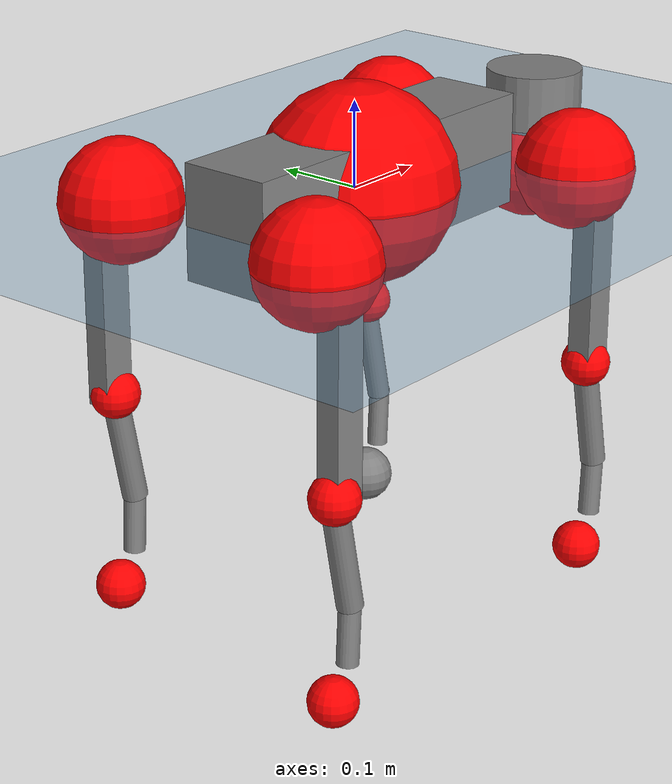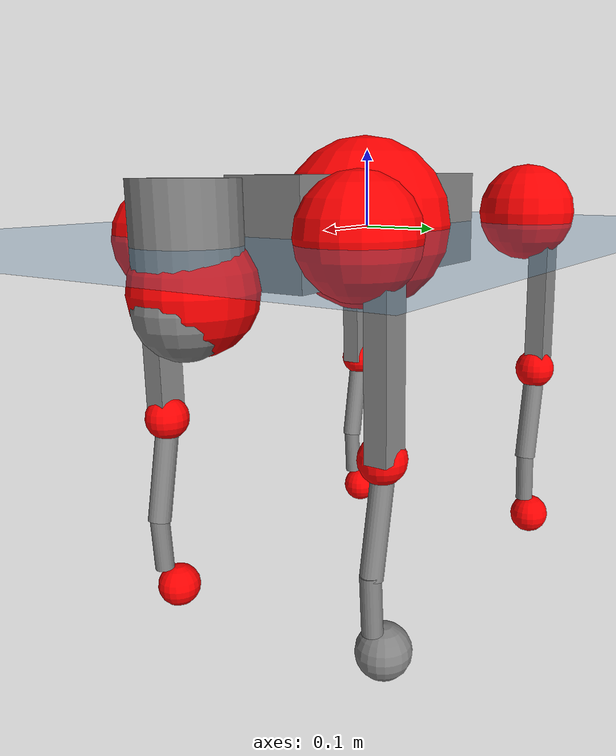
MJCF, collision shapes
<mujoco model="go2">
  <compiler angle="radian" assetdir="assets" balanceinertia="true" inertiafromgeom="false"/>

  <option timestep="0.005" density="1.2" viscosity="2e-05"/>

  <size nkey="1"/>

  <visual>
    <quality shadowsize="8192"/>
    <map shadowclip="0.5"/>
  </visual>

  <default>
    <default class="/">
      <geom contype="0" conaffinity="0" group="1" solref="-1000 -80"/>
      <site size="0.01 0.005 0.005" group="5"/>
      <general forcelimited="true" biastype="affine" gainprm="20" biasprm="0 -20 -0.5"/>
      <default class="go2">
        <joint armature="0.01" damping="0.01" frictionloss="0.2"/>
        <geom condim="1" margin="0.001"/>
        <default class="visual">
          <geom type="mesh" group="2"/>
        </default>
        <default class="collision">
          <geom group="3"/>
          <default class="foot">
            <geom size="0.022 0 0" condim="6" priority="1" friction="0.8 0.02 0.01" solimp="0.015 1 0.022"/>
          </default>
        </default>
        <default class="reward_collision_sphere">
          <geom group="5" rgba="1 0 0 1"/>
        </default>
      </default>
    </default>
  </default>

  <asset>
    <texture type="skybox" colorspace="auto" name="//unnamed_texture_0" builtin="gradient" rgb1="0.95 0.95 0.95" rgb2="0.95 0.95 0.95" width="100" height="600"/>
    <texture type="2d" colorspace="auto" name="texplane" builtin="checker" rgb1="0.345 0.575 0.748" rgb2="0.345 0.575 0.748" markrgb="1 1 1" width="512" height="512"/>
    <material name="MatPlane" class="/" texture="texplane" texuniform="true" texrepeat="2 2" specular="0.9"/>
    <material name="metal" class="/" rgba="0.9 0.95 0.95 1"/>
    <material name="black" class="/" rgba="0 0 0 1"/>
    <material name="white" class="/"/>
    <material name="gray" class="/" rgba="0.671705 0.692426 0.77427 1"/>
    <mesh name="base_0" class="/" file="base_0.obj"/>
    <mesh name="base_1" class="/" file="base_1.obj"/>
    <mesh name="base_2" class="/" file="base_2.obj"/>
    <mesh name="base_3" class="/" file="base_3.obj"/>
    <mesh name="base_4" class="/" file="base_4.obj"/>
    <mesh name="hip_0" class="/" file="hip_0.obj"/>
    <mesh name="hip_1" class="/" file="hip_1.obj"/>
    <mesh name="thigh_0" class="/" file="thigh_0.obj"/>
    <mesh name="thigh_1" class="/" file="thigh_1.obj"/>
    <mesh name="thigh_mirror_0" class="/" file="thigh_mirror_0.obj"/>
    <mesh name="thigh_mirror_1" class="/" file="thigh_mirror_1.obj"/>
    <mesh name="calf_0" class="/" file="calf_0.obj"/>
    <mesh name="calf_1" class="/" file="calf_1.obj"/>
    <mesh name="calf_mirror_0" class="/" file="calf_mirror_0.obj"/>
    <mesh name="calf_mirror_1" class="/" file="calf_mirror_1.obj"/>
    <mesh name="foot" class="/" file="foot.obj"/>
  </asset>

  <worldbody>
    <geom name="floor" class="/" size="100 100 0.125" type="plane" group="0" material="MatPlane"/>
    <light name="toplight_shadow" class="/" pos="0 0 5" dir="0.0990148 0.0990148 -0.990148" type="directional" ambient="0.04 0.04 0.04" diffuse="0.55 0.55 0.55" specular="0.12 0.12 0.12"/>
    <light name="toplight_fill" class="/" pos="0 0 5" dir="0.0990148 0.0990148 -0.990148" type="directional" castshadow="false" ambient="0.04 0.04 0.04" diffuse="0.3 0.3 0.3" specular="0.08 0.08 0.08"/>
    <body name="trunk" childclass="go2" pos="0.005641 0.00125086 0.00314991" quat="0.999997 0.00181867 0.00131786 -0.000606589">
      <inertial pos="0.0281796 -0.0036662 -0.00390418" quat="0.0189438 0.713994 -0.0307483 0.69922" mass="10.8822" diaginertia="0.212019 0.20697 0.0383323"/>
      <joint name="//unnamed_joint_0" type="free" armature="0" damping="0" frictionloss="0"/>
      <geom name="//unnamed_geom_1" class="visual" material="black" mesh="base_0"/>
      <geom name="//unnamed_geom_2" class="visual" material="black" mesh="base_1"/>
      <geom name="//unnamed_geom_3" class="visual" material="black" mesh="base_2"/>
      <geom name="//unnamed_geom_4" class="visual" material="white" mesh="base_3"/>
      <geom name="//unnamed_geom_5" class="visual" material="gray" mesh="base_4"/>
      <geom name="trunk_1" class="collision" size="0.217506 0.0540585 0.0659109" type="box"/>
      <geom name="trunk_2" class="collision" size="0.0578166 0.0520349" pos="0.33618 0 0.0112791" type="cylinder"/>
      <geom name="trunk_3" class="collision" size="0.0543476" pos="0.345617 0 -0.0676744"/>
      <geom name="//unnamed_geom_9" class="reward_collision_sphere" size="0.115633"/>
      <geom name="//unnamed_geom_10" class="reward_collision_sphere" size="0.0693799" pos="0.330282 0 -0.0507558"/>
      <site name="imu" pos="-0.0487929 0.0539851 0.054775" size="0.0115633"/>
      <camera name="track" pos="0 -2.32302 0" quat="0.707107 0.707107 0 0" mode="trackcom"/>
      <camera name="ego_camera" pos="0.368029 0 0.0507558" quat="-0.5 -0.5 0.5 0.5"/>
      <body name="FL_hip" pos="0.228012 0.0563994 0.00305851" quat="0.999987 -0.000768947 0.00117941 -0.00499563">
        <inertial pos="-0.00307297 0.00436382 6.28805e-05" quat="0.520468 0.496527 0.488735 0.493673" mass="0.933931" diaginertia="0.00178001 0.00112657 0.000745289"/>
        <joint name="FL_hip_joint" pos="0 0 0" axis="0.999769 0.00836771 0.019813" stiffness="0.00200543" range="-1.22169 1.03763" armature="0.00771784" damping="0.0269674" frictionloss="0.218005"/>
        <geom name="//unnamed_geom_11" class="visual" material="metal" mesh="hip_0"/>
        <geom name="//unnamed_geom_12" class="visual" material="gray" mesh="hip_1"/>
        <geom name="//unnamed_geom_13" class="collision" size="0.0531913 0.0231266" pos="0 0.0929208 0" quat="0.707107 0.707107 0 0" type="cylinder"/>
        <geom name="//unnamed_geom_14" class="reward_collision_sphere" size="0.0693799" pos="0 0.0813057 0"/>
        <body name="FL_thigh" pos="-0.00252002 0.111285 0.00190071" quat="1 -2.50632e-05 -3.94335e-05 -2.73547e-05">
          <inertial pos="-0.00610313 -0.0170102 -0.0260399" quat="0.830555 0.0828116 -0.0193347 0.550406" mass="1.80328" diaginertia="0.0140713 0.0132153 0.00165636"/>
          <joint name="FL_thigh_joint" pos="0 0 0" axis="0.00520445 0.99998 0.00347091" range="-1.56463 3.28581" armature="0.0137153" damping="0.0615356" frictionloss="0.234473"/>
          <geom name="//unnamed_geom_15" class="visual" material="metal" mesh="thigh_0"/>
          <geom name="//unnamed_geom_16" class="visual" material="gray" mesh="thigh_1"/>
          <geom name="//unnamed_geom_17" class="collision" size="0.123149 0.0141651 0.0196576" pos="0 0 -0.120122" quat="0.707107 0 0.707107 0" type="box"/>
          <body name="FL_calf" pos="-0.0111732 -0.00958165 -0.245715" quat="1 -2.91134e-05 1.70374e-05 -2.99995e-05">
            <inertial pos="0.00798817 0.0031252 -0.164634" quat="0.710712 0.000921419 -0.0045048 0.703468" mass="0.339074" diaginertia="0.00324149 0.003149 9.90731e-05"/>
            <joint name="FL_calf_joint" pos="0 0 0" axis="-0.00163389 0.999984 -0.00536001" stiffness="0.0524699" range="-2.82451 -0.677704" armature="0.0117539" damping="0" frictionloss="0.214545"/>
            <geom name="//unnamed_geom_18" class="visual" material="gray" mesh="calf_0"/>
            <geom name="//unnamed_geom_19" class="visual" material="black" mesh="calf_1"/>
            <geom name="FL_calf0" class="collision" size="0.013876 0.0693799" pos="0.00943663 0 -0.0676744" quat="0.994493 0 -0.104807 0" type="cylinder"/>
            <geom name="//unnamed_geom_21" class="collision" size="0.0127197 0.0375808" pos="0.0235916 0 -0.16693" quat="0.999688 0 0.0249974 0" type="cylinder"/>
            <geom name="//unnamed_geom_22" class="visual" pos="0 0 -0.240244" quat="1 0 0 0" material="black" mesh="foot"/>
            <geom name="FL_foot" class="foot" size="0.0344934" pos="-0.00235916 0 -0.240244"/>
            <geom name="//unnamed_geom_24" class="reward_collision_sphere" size="0.0289083"/>
            <geom name="//unnamed_geom_25" class="reward_collision_sphere" size="0.0289083" pos="-0.00235916 0 -0.240244"/>
            <site name="FL_foot" class="foot" pos="-0.00235916 0 -0.240244" size="0.0115633"/>
          </body>
        </body>
      </body>
      <body name="FR_hip" pos="0.225182 -0.0571844 -0.00929742" quat="0.999999 0.000630395 -0.000746449 0.000455572">
        <inertial pos="-0.00614877 0.00294995 0.00199866" quat="0.512841 0.496218 0.466842 0.522323" mass="0.921954" diaginertia="0.00185644 0.00108338 0.000780873"/>
        <joint name="FR_hip_joint" pos="0 0 0" axis="0.999968 -0.00714335 0.00347627" stiffness="0.0103606" range="-1.16608 1.08725" armature="0.0112603" damping="0" frictionloss="0.218245"/>
        <geom name="//unnamed_geom_26" class="visual" pos="0 2.92743e-10 1.25564e-08" quat="4.63268e-05 1 0 0" material="metal" mesh="hip_0"/>
        <geom name="//unnamed_geom_27" class="visual" pos="0 4.74572e-10 -3.10567e-08" quat="4.63268e-05 1 0 0" material="gray" mesh="hip_1"/>
        <geom name="//unnamed_geom_28" class="collision" size="0.0531913 0.0231266" pos="0 -0.0929208 0" quat="0.707107 0.707107 0 0" type="cylinder"/>
        <geom name="//unnamed_geom_29" class="reward_collision_sphere" size="0.0693799" pos="0 -0.0813057 0"/>
        <body name="FR_thigh" pos="-0.00283158 -0.111083 0.00674738" quat="1 -0.000238015 -0.000241042 0.000217838">
          <inertial pos="-0.00352999 0.0255034 -0.0273337" quat="0.538193 -0.036328 0.135904 0.830999" mass="1.55982" diaginertia="0.0125237 0.0108715 0.0014119"/>
          <joint name="FR_thigh_joint" pos="0 0 0" axis="-0.0100209 -0.999949 -0.00118243" stiffness="0.00562404" range="-3.3058 1.43655" armature="0.015152" damping="0.0183314" frictionloss="0.234743"/>
          <geom name="//unnamed_geom_30" class="visual" material="metal" mesh="thigh_mirror_0"/>
          <geom name="//unnamed_geom_31" class="visual" material="gray" mesh="thigh_mirror_1"/>
          <geom name="//unnamed_geom_32" class="collision" size="0.123149 0.0141651 0.0196576" pos="0 0 -0.120122" quat="0.707107 0 0.707107 0" type="box"/>
          <body name="FR_calf" pos="0.00134671 0.00236842 -0.239236" quat="1 0.00020713 -0.000257456 -5.07695e-05">
            <inertial pos="0.00811359 0.00235101 -0.170641" quat="0.700968 0.0130155 0.0017589 0.713071" mass="0.459441" diaginertia="0.00377818 0.00305785 0.000122324"/>
            <joint name="FR_calf_joint" pos="0 0 0" axis="0.00362402 -0.999991 -0.00225256" stiffness="0.019" range="0.870285 2.78979" armature="0.00799983" damping="0.00360734" frictionloss="0.231601"/>
            <geom name="//unnamed_geom_33" class="visual" material="gray" mesh="calf_mirror_0"/>
            <geom name="//unnamed_geom_34" class="visual" material="black" mesh="calf_mirror_1"/>
            <geom name="FR_calf0" class="collision" size="0.0150323 0.0693799" pos="0.0117958 0 -0.0676744" quat="0.995004 0 -0.0998334 0" type="cylinder"/>
            <geom name="//unnamed_geom_36" class="collision" size="0.0127197 0.0375808" pos="0.0235916 0 -0.16693" quat="0.999688 0 0.0249974 0" type="cylinder"/>
            <geom name="//unnamed_geom_37" class="visual" pos="0 0 -0.240244" quat="1 0 0 0" material="black" mesh="foot"/>
            <geom name="FR_foot" class="foot" size="0.0208952" pos="-0.00235916 0 -0.240244"/>
            <geom name="//unnamed_geom_39" class="reward_collision_sphere" size="0.0289083"/>
            <geom name="//unnamed_geom_40" class="reward_collision_sphere" size="0.0289083" pos="-0.00235916 0 -0.240244"/>
            <site name="FR_foot" class="foot" pos="-0.00235916 0 -0.240244" size="0.0115633"/>
          </body>
        </body>
      </body>
      <body name="RL_hip" pos="-0.229138 0.0567082 0.0090321" quat="1 0.000493245 8.17716e-05 0.000555855">
        <inertial pos="0.00766401 0.000447666 0.0087961" quat="0.503064 0.498124 0.493953 0.504788" mass="0.917621" diaginertia="0.00178819 0.00131553 0.000879402"/>
        <joint name="RL_hip_joint" pos="0 0 0" axis="-0.999941 0.0106862 0.00176585" range="-1.25532 0.877574" armature="0.0113307" damping="0.0337597" frictionloss="0.13317"/>
        <geom name="//unnamed_geom_41" class="visual" pos="-4.50149e-10 0 -8.82395e-08" quat="4.63268e-05 0 1 0" material="metal" mesh="hip_0"/>
        <geom name="//unnamed_geom_42" class="visual" pos="-7.29745e-10 0 -7.82559e-08" quat="4.63268e-05 0 1 0" material="gray" mesh="hip_1"/>
        <geom name="//unnamed_geom_43" class="collision" size="0.0531913 0.0231266" pos="0 0.0929208 0" quat="0.707107 0.707107 0 0" type="cylinder"/>
        <geom name="//unnamed_geom_44" class="reward_collision_sphere" size="0.0693799" pos="0 0.0813057 0"/>
        <body name="RL_thigh" pos="0.00143033 0.110507 -0.000998875" quat="1 -3.04049e-06 -1.46586e-05 -0.000106099">
          <inertial pos="0.00375554 -0.0249375 -0.026165" quat="0.820661 0.113834 -0.0479548 0.557905" mass="1.71678" diaginertia="0.0147601 0.0122985 0.00173144"/>
          <joint name="RL_thigh_joint" pos="0 0 0" axis="0.0308022 0.999196 0.025666" stiffness="0.00433821" range="-0.35491 4.52711" armature="0.0107631" damping="0.00486631" frictionloss="0.213939"/>
          <geom name="//unnamed_geom_45" class="visual" material="metal" mesh="thigh_0"/>
          <geom name="//unnamed_geom_46" class="visual" material="gray" mesh="thigh_1"/>
          <geom name="//unnamed_geom_47" class="collision" size="0.123149 0.0141651 0.0196576" pos="0 0 -0.120122" quat="0.707107 0 0.707107 0" type="box"/>
          <body name="RL_calf" pos="0.00472308 -0.00236166 -0.234167" quat="1 0.000754773 0.000162121 0.000229848">
            <inertial pos="0.00354705 0.00355401 -0.164542" quat="0.724851 0.00889728 -0.0305916 0.688168" mass="0.405185" diaginertia="0.00342117 0.0030483 9.93893e-05"/>
            <joint name="RL_calf_joint" pos="0 0 0" axis="-0.00330289 0.999856 0.0166752" stiffness="0.0542635" range="-2.74487 -0.832367" armature="0.0118744" damping="0.00771623" frictionloss="0.184299"/>
            <geom name="//unnamed_geom_48" class="visual" material="gray" mesh="calf_0"/>
            <geom name="//unnamed_geom_49" class="visual" material="black" mesh="calf_1"/>
            <geom name="RL_calf0" class="collision" size="0.0150323 0.0693799" pos="0.0117958 0 -0.0676744" quat="0.995004 0 -0.0998334 0" type="cylinder"/>
            <geom name="//unnamed_geom_51" class="collision" size="0.0127197 0.0375808" pos="0.0235916 0 -0.16693" quat="0.999688 0 0.0249974 0" type="cylinder"/>
            <geom name="//unnamed_geom_52" class="visual" pos="0 0 -0.240244" quat="1 0 0 0" material="black" mesh="foot"/>
            <geom name="RL_foot" class="foot" size="0.0237308" pos="-0.00235916 0 -0.240244"/>
            <geom name="//unnamed_geom_54" class="reward_collision_sphere" size="0.0289083"/>
            <geom name="//unnamed_geom_55" class="reward_collision_sphere" size="0.0289083" pos="-0.00235916 0 -0.240244"/>
            <site name="RL_foot" class="foot" pos="-0.00235916 0 -0.240244" size="0.0115633"/>
          </body>
        </body>
      </body>
      <body name="RR_hip" pos="-0.227196 -0.0534212 8.10881e-06" quat="1 -0.000529798 0.000503973 0.000356222">
        <inertial pos="0.00804562 -0.0104726 0.00552771" quat="0.499257 0.496784 0.498294 0.50562" mass="1.14651" diaginertia="0.00224827 0.00140814 0.000980386"/>
        <joint name="RR_hip_joint" pos="0 0 0" axis="-0.999971 0.00678556 -0.00334448" range="-1.08015 1.18651" armature="0.0134798" damping="0.0507031" frictionloss="0.215118"/>
        <geom name="//unnamed_geom_56" class="visual" pos="4.49523e-10 2.92743e-10 -1.00796e-07" quat="2.14617e-09 4.63268e-05 4.63268e-05 -1" material="metal" mesh="hip_0"/>
        <geom name="//unnamed_geom_57" class="visual" pos="7.31292e-10 4.74572e-10 -4.71992e-08" quat="2.14617e-09 4.63268e-05 4.63268e-05 -1" material="gray" mesh="hip_1"/>
        <geom name="//unnamed_geom_58" class="collision" size="0.0531913 0.0231266" pos="0 -0.0929208 0" quat="0.707107 0.707107 0 0" type="cylinder"/>
        <geom name="//unnamed_geom_59" class="reward_collision_sphere" size="0.0693799" pos="0 -0.0813057 0"/>
        <body name="RR_thigh" pos="0.00111141 -0.110794 -0.0092227" quat="1 9.22337e-05 -9.0641e-05 7.30116e-05">
          <inertial pos="0.000103708 0.0201976 -0.0369879" quat="0.551845 -0.0211198 0.0840457 0.829432" mass="2.11187" diaginertia="0.0143273 0.0131685 0.00159539"/>
          <joint name="RR_thigh_joint" pos="0 0 0" axis="0.00817421 -0.999892 0.0121973" range="-4.35379 0.355957" armature="0.0123774" damping="0.011242" frictionloss="0.315021"/>
          <geom name="//unnamed_geom_60" class="visual" material="metal" mesh="thigh_mirror_0"/>
          <geom name="//unnamed_geom_61" class="visual" material="gray" mesh="thigh_mirror_1"/>
          <geom name="//unnamed_geom_62" class="collision" size="0.123149 0.0141651 0.0196576" pos="0 0 -0.120122" quat="0.707107 0 0.707107 0" type="box"/>
          <body name="RR_calf" pos="-0.00949811 -0.00122977 -0.239971" quat="1 -6.54451e-05 0.000174872 0.000323615">
            <inertial pos="0.00615018 0.000968449 -0.159948" quat="0.706135 -0.00819736 -0.000728562 0.708029" mass="0.427426" diaginertia="0.0035997 0.00321744 0.000105598"/>
            <joint name="RR_calf_joint" pos="0 0 0" axis="0.00459439 -0.999743 0.0221941" stiffness="0.0317291" range="0.830428 2.64304" armature="0.0129834" damping="0.0571803" frictionloss="0.211989"/>
            <geom name="//unnamed_geom_63" class="visual" material="gray" mesh="calf_mirror_0"/>
            <geom name="//unnamed_geom_64" class="visual" material="black" mesh="calf_mirror_1"/>
            <geom name="RR_calf0" class="collision" size="0.0150323 0.0693799" pos="0.0117958 0 -0.0676744" quat="0.995004 0 -0.0998334 0" type="cylinder"/>
            <geom name="//unnamed_geom_66" class="collision" size="0.0127197 0.0375808" pos="0.0235916 0 -0.16693" quat="0.999688 0 0.0249974 0" type="cylinder"/>
            <geom name="//unnamed_geom_67" class="visual" pos="0 0 -0.240244" quat="1 0 0 0" material="black" mesh="foot"/>
            <geom name="RR_foot" class="foot" size="0.0243238" pos="-0.00235916 0 -0.240244"/>
            <geom name="//unnamed_geom_69" class="reward_collision_sphere" size="0.0289083"/>
            <geom name="//unnamed_geom_70" class="reward_collision_sphere" size="0.0289083" pos="-0.00235916 0 -0.240244"/>
            <site name="RR_foot" class="foot" pos="-0.00235916 0 -0.240244" size="0.0115633"/>
          </body>
        </body>
      </body>
    </body>
  </worldbody>

  <contact>
    <pair class="/" geom1="floor" geom2="FL_foot" name="//unnamed_contact_0"/>
    <pair class="/" geom1="floor" geom2="FR_foot" name="//unnamed_contact_1"/>
    <pair class="/" geom1="floor" geom2="RL_foot" name="//unnamed_contact_2"/>
    <pair class="/" geom1="floor" geom2="RR_foot" name="//unnamed_contact_3"/>
  </contact>

  <actuator>
    <general name="FL_hip" class="/" joint="FL_hip_joint" forcerange="-28.3547 28.3547" gainprm="23.803" biasprm="0 -23.803 -0.462499"/>
    <general name="FL_thigh" class="/" joint="FL_thigh_joint" forcerange="-19.6223 19.6223" gainprm="23.803" biasprm="0 -23.803 -0.462499"/>
    <general name="FL_calf" class="/" joint="FL_calf_joint" forcerange="-69.4932 69.4932" gainprm="23.803" biasprm="0 -23.803 -0.462499"/>
    <general name="FR_hip" class="/" joint="FR_hip_joint" forcerange="-29.2316 29.2316" gainprm="23.803" biasprm="0 -23.803 -0.462499"/>
    <general name="FR_thigh" class="/" joint="FR_thigh_joint" forcerange="-22.9841 22.9841" gainprm="23.803" biasprm="0 -23.803 -0.462499"/>
    <general name="FR_calf" class="/" joint="FR_calf_joint" forcerange="-30.2468 30.2468" gainprm="23.803" biasprm="0 -23.803 -0.462499"/>
    <general name="RL_hip" class="/" joint="RL_hip_joint" forcerange="-18.2938 18.2938" gainprm="23.803" biasprm="0 -23.803 -0.462499"/>
    <general name="RL_thigh" class="/" joint="RL_thigh_joint" forcerange="-24.46 24.46" gainprm="23.803" biasprm="0 -23.803 -0.462499"/>
    <general name="RL_calf" class="/" joint="RL_calf_joint" forcerange="-57.5228 57.5228" gainprm="23.803" biasprm="0 -23.803 -0.462499"/>
    <general name="RR_hip" class="/" joint="RR_hip_joint" forcerange="-25.3319 25.3319" gainprm="23.803" biasprm="0 -23.803 -0.462499"/>
    <general name="RR_thigh" class="/" joint="RR_thigh_joint" forcerange="-38.141 38.141" gainprm="23.803" biasprm="0 -23.803 -0.462499"/>
    <general name="RR_calf" class="/" joint="RR_calf_joint" forcerange="-66.0641 66.0641" gainprm="23.803" biasprm="0 -23.803 -0.462499"/>
  </actuator>

  <sensor>
    <gyro site="imu" name="imu_angular_velocity"/>
    <velocimeter site="imu" name="imu_linear_velocity"/>
    <framelinvel objtype="site" objname="FL_foot" name="FL_foot_global_linear_velocity"/>
    <framelinvel objtype="site" objname="FR_foot" name="FR_foot_global_linear_velocity"/>
    <framelinvel objtype="site" objname="RL_foot" name="RL_foot_global_linear_velocity"/>
    <framelinvel objtype="site" objname="RR_foot" name="RR_foot_global_linear_velocity"/>
  </sensor>

  <keyframe>
    <key name="home" qpos="0 0 0.325 1 0 0 0 0.1 0.8 -1.5 -0.1 -0.8 1.5 -0.1 0.8 -1.5 0.1 -0.8 1.5"/>
  </keyframe>
</mujoco>
